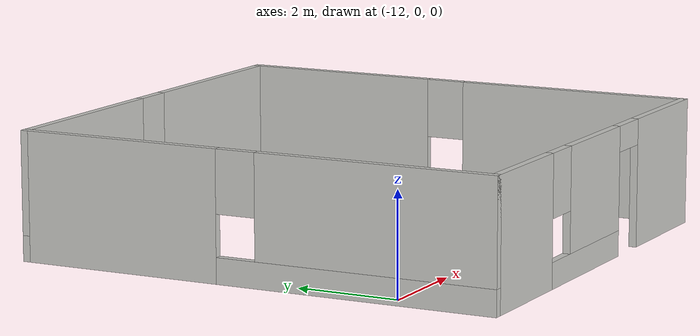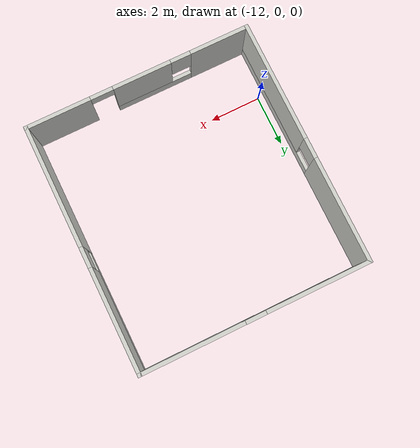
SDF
<?xml version='1.0'?>
<sdf version='1.6'>
  <model name='myroom'>
    <pose frame=''>-7.89984 2.7708 0 0 -0 0</pose>
    <link name='Wall_15'>
      <pose frame=''>-4.425 0 0 0 0 -1.5708</pose>
      <visual name='Wall_15_Visual_0'>
        <pose frame=''>-2.7905 0 1.25 0 -0 0</pose>
        <geometry>
          <box>
            <size>4.169 0.15 2.5</size>
          </box>
        </geometry>
        <material>
          <script>
            <uri>file://media/materials/scripts/gazebo.material</uri>
            <name>Gazebo/CeilingTiled</name>
          </script>
          <ambient>0.996078 0.47451 0.0196078 1</ambient>
        </material>
        <meta>
          <layer>0</layer>
        </meta>
      </visual>
      <collision name='Wall_15_Collision_0'>
        <geometry>
          <box>
            <size>4.169 0.15 2.5</size>
          </box>
        </geometry>
        <pose frame=''>-2.7905 0 1.25 0 -0 0</pose>
      </collision>
      <visual name='Wall_15_Visual_1'>
        <pose frame=''>2.0845 0 0.25 0 -0 0</pose>
        <geometry>
          <box>
            <size>5.581 0.15 0.5</size>
          </box>
        </geometry>
        <material>
          <script>
            <uri>file://media/materials/scripts/gazebo.material</uri>
            <name>Gazebo/CeilingTiled</name>
          </script>
          <ambient>0.996078 0.47451 0.0196078 1</ambient>
        </material>
        <meta>
          <layer>0</layer>
        </meta>
      </visual>
      <collision name='Wall_15_Collision_1'>
        <geometry>
          <box>
            <size>5.581 0.15 0.5</size>
          </box>
        </geometry>
        <pose frame=''>2.0845 0 0.25 0 -0 0</pose>
      </collision>
      <visual name='Wall_15_Visual_2'>
        <pose frame=''>2.4845 0 1.5 0 -0 0</pose>
        <geometry>
          <box>
            <size>4.781 0.15 2</size>
          </box>
        </geometry>
        <material>
          <script>
            <uri>file://media/materials/scripts/gazebo.material</uri>
            <name>Gazebo/CeilingTiled</name>
          </script>
          <ambient>0.996078 0.47451 0.0196078 1</ambient>
        </material>
        <meta>
          <layer>0</layer>
        </meta>
      </visual>
      <collision name='Wall_15_Collision_2'>
        <geometry>
          <box>
            <size>4.781 0.15 2</size>
          </box>
        </geometry>
        <pose frame=''>2.4845 0 1.5 0 -0 0</pose>
      </collision>
      <visual name='Wall_15_Visual_3'>
        <pose frame=''>-0.306001 0 1.9 0 -0 0</pose>
        <geometry>
          <box>
            <size>0.8 0.15 1.2</size>
          </box>
        </geometry>
        <material>
          <script>
            <uri>file://media/materials/scripts/gazebo.material</uri>
            <name>Gazebo/CeilingTiled</name>
          </script>
          <ambient>0.996078 0.47451 0.0196078 1</ambient>
        </material>
        <meta>
          <layer>0</layer>
        </meta>
      </visual>
      <collision name='Wall_15_Collision_3'>
        <geometry>
          <box>
            <size>0.8 0.15 1.2</size>
          </box>
        </geometry>
        <pose frame=''>-0.306001 0 1.9 0 -0 0</pose>
      </collision>
    </link>
    <link name='Wall_16'>
      <pose frame=''>0 -4.8 0 0 -0 0</pose>
      <visual name='Wall_16_Visual_0'>
        <pose frame=''>-3.30817 0 1.25 0 -0 0</pose>
        <geometry>
          <box>
            <size>2.38366 0.15 2.5</size>
          </box>
        </geometry>
        <material>
          <script>
            <uri>file://media/materials/scripts/gazebo.material</uri>
            <name>Gazebo/CeilingTiled</name>
          </script>
          <ambient>0.996078 0.47451 0.0196078 1</ambient>
        </material>
        <meta>
          <layer>0</layer>
        </meta>
      </visual>
      <collision name='Wall_16_Collision_0'>
        <geometry>
          <box>
            <size>2.38366 0.15 2.5</size>
          </box>
        </geometry>
        <pose frame=''>-3.30817 0 1.25 0 -0 0</pose>
      </collision>
      <visual name='Wall_16_Visual_1'>
        <pose frame=''>3.19864 0 1.25 0 -0 0</pose>
        <geometry>
          <box>
            <size>2.60272 0.15 2.5</size>
          </box>
        </geometry>
        <material>
          <script>
            <uri>file://media/materials/scripts/gazebo.material</uri>
            <name>Gazebo/CeilingTiled</name>
          </script>
          <ambient>0.996078 0.47451 0.0196078 1</ambient>
        </material>
        <meta>
          <layer>0</layer>
        </meta>
      </visual>
      <collision name='Wall_16_Collision_1'>
        <geometry>
          <box>
            <size>2.60272 0.15 2.5</size>
          </box>
        </geometry>
        <pose frame=''>3.19864 0 1.25 0 -0 0</pose>
      </collision>
      <visual name='Wall_16_Visual_2'>
        <pose frame=''>-0.559529 0 0.25 0 -0 0</pose>
        <geometry>
          <box>
            <size>3.11363 0.15 0.5</size>
          </box>
        </geometry>
        <material>
          <script>
            <uri>file://media/materials/scripts/gazebo.material</uri>
            <name>Gazebo/CeilingTiled</name>
          </script>
          <ambient>0.996078 0.47451 0.0196078 1</ambient>
        </material>
        <meta>
          <layer>0</layer>
        </meta>
      </visual>
      <collision name='Wall_16_Collision_2'>
        <geometry>
          <box>
            <size>3.11363 0.15 0.5</size>
          </box>
        </geometry>
        <pose frame=''>-0.559529 0 0.25 0 -0 0</pose>
      </collision>
      <visual name='Wall_16_Visual_3'>
        <pose frame=''>-0.159529 0 1.5 0 -0 0</pose>
        <geometry>
          <box>
            <size>2.31363 0.15 2</size>
          </box>
        </geometry>
        <material>
          <script>
            <uri>file://media/materials/scripts/gazebo.material</uri>
            <name>Gazebo/CeilingTiled</name>
          </script>
          <ambient>0.996078 0.47451 0.0196078 1</ambient>
        </material>
        <meta>
          <layer>0</layer>
        </meta>
      </visual>
      <collision name='Wall_16_Collision_3'>
        <geometry>
          <box>
            <size>2.31363 0.15 2</size>
          </box>
        </geometry>
        <pose frame=''>-0.159529 0 1.5 0 -0 0</pose>
      </collision>
      <visual name='Wall_16_Visual_4'>
        <pose frame=''>-1.71634 0 1.9 0 -0 0</pose>
        <geometry>
          <box>
            <size>0.8 0.15 1.2</size>
          </box>
        </geometry>
        <material>
          <script>
            <uri>file://media/materials/scripts/gazebo.material</uri>
            <name>Gazebo/CeilingTiled</name>
          </script>
          <ambient>0.996078 0.47451 0.0196078 1</ambient>
        </material>
        <meta>
          <layer>0</layer>
        </meta>
      </visual>
      <collision name='Wall_16_Collision_4'>
        <geometry>
          <box>
            <size>0.8 0.15 1.2</size>
          </box>
        </geometry>
        <pose frame=''>-1.71634 0 1.9 0 -0 0</pose>
      </collision>
      <visual name='Wall_16_Visual_5'>
        <pose frame=''>1.44728 0 2.25 0 -0 0</pose>
        <geometry>
          <box>
            <size>0.9 0.15 0.5</size>
          </box>
        </geometry>
        <material>
          <script>
            <uri>file://media/materials/scripts/gazebo.material</uri>
            <name>Gazebo/CeilingTiled</name>
          </script>
          <ambient>0.996078 0.47451 0.0196078 1</ambient>
        </material>
        <meta>
          <layer>0</layer>
        </meta>
      </visual>
      <collision name='Wall_16_Collision_5'>
        <geometry>
          <box>
            <size>0.9 0.15 0.5</size>
          </box>
        </geometry>
        <pose frame=''>1.44728 0 2.25 0 -0 0</pose>
      </collision>
    </link>
    <link name='Wall_17'>
      <pose frame=''>4.425 0 0 0 -0 1.5708</pose>
      <visual name='Wall_17_Visual_0'>
        <pose frame=''>-2.45381 0 1.25 0 -0 0</pose>
        <geometry>
          <box>
            <size>4.84237 0.15 2.5</size>
          </box>
        </geometry>
        <material>
          <script>
            <uri>file://media/materials/scripts/gazebo.material</uri>
            <name>Gazebo/CeilingTiled</name>
          </script>
          <ambient>0.996078 0.47451 0.0196078 1</ambient>
        </material>
        <meta>
          <layer>0</layer>
        </meta>
      </visual>
      <collision name='Wall_17_Collision_0'>
        <geometry>
          <box>
            <size>4.84237 0.15 2.5</size>
          </box>
        </geometry>
        <pose frame=''>-2.45381 0 1.25 0 -0 0</pose>
      </collision>
      <visual name='Wall_17_Visual_1'>
        <pose frame=''>2.42119 0 0.25 0 -0 0</pose>
        <geometry>
          <box>
            <size>4.90763 0.15 0.5</size>
          </box>
        </geometry>
        <material>
          <script>
            <uri>file://media/materials/scripts/gazebo.material</uri>
            <name>Gazebo/CeilingTiled</name>
          </script>
          <ambient>0.996078 0.47451 0.0196078 1</ambient>
        </material>
        <meta>
          <layer>0</layer>
        </meta>
      </visual>
      <collision name='Wall_17_Collision_1'>
        <geometry>
          <box>
            <size>4.90763 0.15 0.5</size>
          </box>
        </geometry>
        <pose frame=''>2.42119 0 0.25 0 -0 0</pose>
      </collision>
      <visual name='Wall_17_Visual_2'>
        <pose frame=''>2.82119 0 1.5 0 -0 0</pose>
        <geometry>
          <box>
            <size>4.10763 0.15 2</size>
          </box>
        </geometry>
        <material>
          <script>
            <uri>file://media/materials/scripts/gazebo.material</uri>
            <name>Gazebo/CeilingTiled</name>
          </script>
          <ambient>0.996078 0.47451 0.0196078 1</ambient>
        </material>
        <meta>
          <layer>0</layer>
        </meta>
      </visual>
      <collision name='Wall_17_Collision_2'>
        <geometry>
          <box>
            <size>4.10763 0.15 2</size>
          </box>
        </geometry>
        <pose frame=''>2.82119 0 1.5 0 -0 0</pose>
      </collision>
      <visual name='Wall_17_Visual_3'>
        <pose frame=''>0.367371 0 1.9 0 -0 0</pose>
        <geometry>
          <box>
            <size>0.8 0.15 1.2</size>
          </box>
        </geometry>
        <material>
          <script>
            <uri>file://media/materials/scripts/gazebo.material</uri>
            <name>Gazebo/CeilingTiled</name>
          </script>
          <ambient>0.996078 0.47451 0.0196078 1</ambient>
        </material>
        <meta>
          <layer>0</layer>
        </meta>
      </visual>
      <collision name='Wall_17_Collision_3'>
        <geometry>
          <box>
            <size>0.8 0.15 1.2</size>
          </box>
        </geometry>
        <pose frame=''>0.367371 0 1.9 0 -0 0</pose>
      </collision>
    </link>
    <link name='Wall_18'>
      <pose frame=''>0 4.8 0 0 -0 3.14159</pose>
      <visual name='Wall_18_Visual_0'>
        <pose frame=''>-2.45252 0 1.25 0 -0 0</pose>
        <geometry>
          <box>
            <size>4.09496 0.15 2.5</size>
          </box>
        </geometry>
        <material>
          <script>
            <uri>file://media/materials/scripts/gazebo.material</uri>
            <name>Gazebo/CeilingTiled</name>
          </script>
          <ambient>0.996078 0.47451 0.0196078 1</ambient>
        </material>
        <meta>
          <layer>0</layer>
        </meta>
      </visual>
      <collision name='Wall_18_Collision_0'>
        <geometry>
          <box>
            <size>4.09496 0.15 2.5</size>
          </box>
        </geometry>
        <pose frame=''>-2.45252 0 1.25 0 -0 0</pose>
      </collision>
      <visual name='Wall_18_Visual_1'>
        <pose frame=''>2.04748 0 0.25 0 -0 0</pose>
        <geometry>
          <box>
            <size>4.90504 0.15 0.5</size>
          </box>
        </geometry>
        <material>
          <script>
            <uri>file://media/materials/scripts/gazebo.material</uri>
            <name>Gazebo/CeilingTiled</name>
          </script>
          <ambient>0.996078 0.47451 0.0196078 1</ambient>
        </material>
        <meta>
          <layer>0</layer>
        </meta>
      </visual>
      <collision name='Wall_18_Collision_1'>
        <geometry>
          <box>
            <size>4.90504 0.15 0.5</size>
          </box>
        </geometry>
        <pose frame=''>2.04748 0 0.25 0 -0 0</pose>
      </collision>
      <visual name='Wall_18_Visual_2'>
        <pose frame=''>2.44748 0 1.5 0 -0 0</pose>
        <geometry>
          <box>
            <size>4.10504 0.15 2</size>
          </box>
        </geometry>
        <material>
          <script>
            <uri>file://media/materials/scripts/gazebo.material</uri>
            <name>Gazebo/CeilingTiled</name>
          </script>
          <ambient>0.996078 0.47451 0.0196078 1</ambient>
        </material>
        <meta>
          <layer>0</layer>
        </meta>
      </visual>
      <collision name='Wall_18_Collision_2'>
        <geometry>
          <box>
            <size>4.10504 0.15 2</size>
          </box>
        </geometry>
        <pose frame=''>2.44748 0 1.5 0 -0 0</pose>
      </collision>
      <visual name='Wall_18_Visual_3'>
        <pose frame=''>-0.005043 0 1.9 0 -0 0</pose>
        <geometry>
          <box>
            <size>0.8 0.15 1.2</size>
          </box>
        </geometry>
        <material>
          <script>
            <uri>file://media/materials/scripts/gazebo.material</uri>
            <name>Gazebo/CeilingTiled</name>
          </script>
          <ambient>0.996078 0.47451 0.0196078 1</ambient>
        </material>
        <meta>
          <layer>0</layer>
        </meta>
      </visual>
      <collision name='Wall_18_Collision_3'>
        <geometry>
          <box>
            <size>0.8 0.15 1.2</size>
          </box>
        </geometry>
        <pose frame=''>-0.005043 0 1.9 0 -0 0</pose>
      </collision>
    </link>
    <static>1</static>
  </model>
</sdf>
